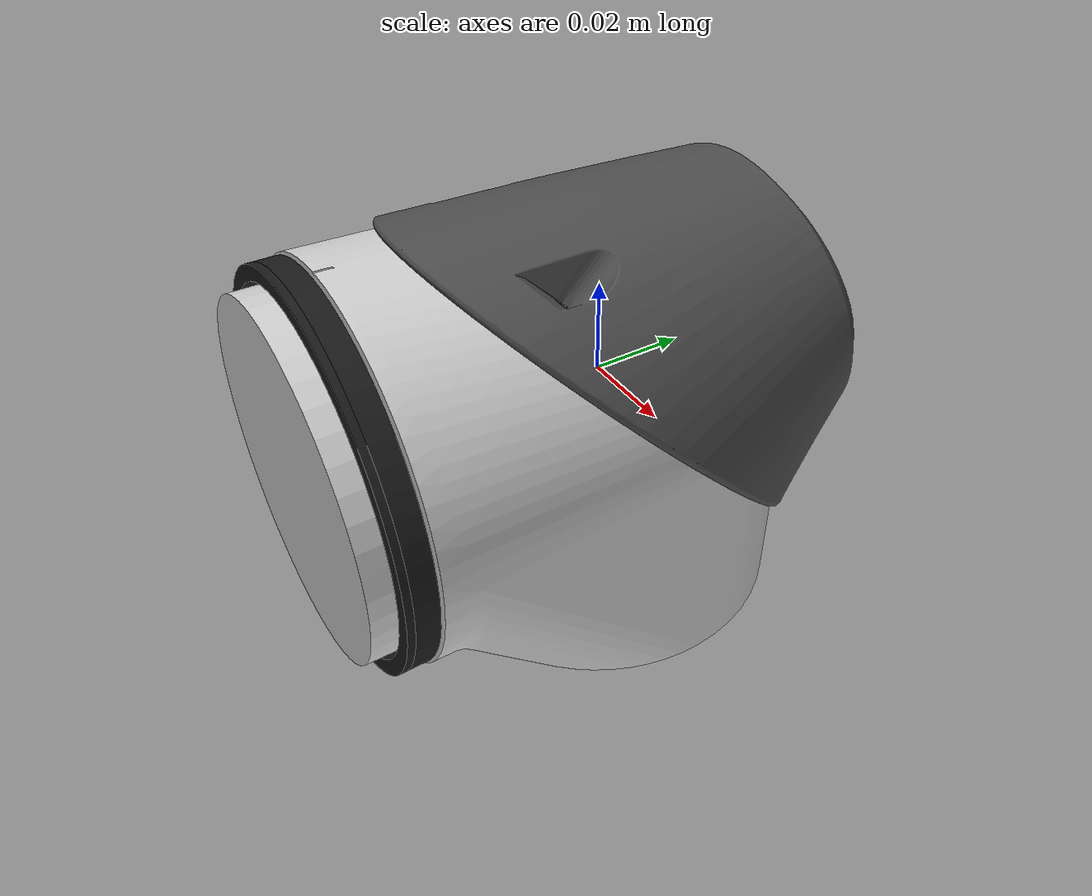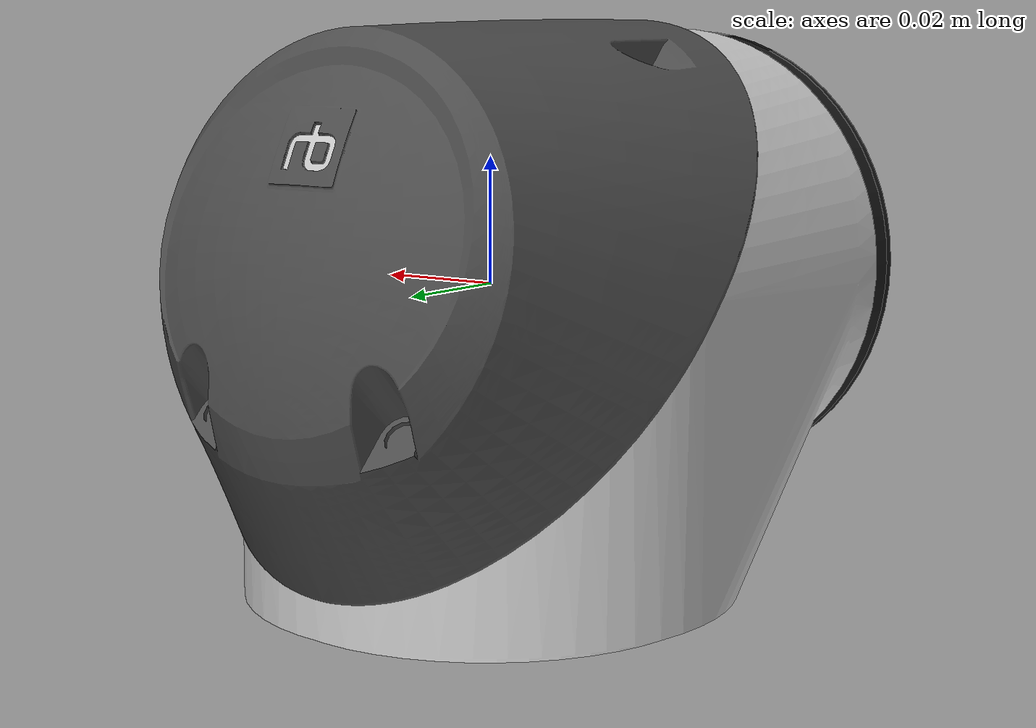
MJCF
<mujoco model="link5">
  <default>
    <default class="visual">
      <geom group="2" type="mesh" contype="0" conaffinity="0"/>
    </default>
    <default class="collision">
      <geom group="3" type="mesh"/>
    </default>
  </default>
  <asset>
    <material name="244,244,244_2" specular="0.5" shininess="0.5" rgba="0.8 0.8 0.8 1"/>
    <material name="125,125,125_2" specular="0.5" shininess="0.5" rgba="0.3 0.3 0.3 1"/>
    <material name="204,204,204_2" specular="0.5" shininess="0.5" rgba="0.1 0.1 0.1 1"/>
    <material name="64,64,64_4" specular="0.5" shininess="0.5" rgba="0.1 0.1 0.1 1"/>
    <material name="Material.001" specular="0.5" shininess="0.5" rgba="0.8 0.8 0.8 1"/>
    <mesh file="link5_0.obj"/>
    <mesh file="link5_1.obj"/>
    <mesh file="link5_2.obj"/>
    <mesh file="link5_3.obj"/>
    <mesh file="link5_4.obj"/>
  </asset>
  <worldbody>
    <body name="link5">
      <geom mesh="link5_0" material="Material.001" class="visual"/>
      <geom mesh="link5_1" material="64,64,64_4" class="visual"/>
      <geom mesh="link5_2" material="204,204,204_2" class="visual"/>
      <geom mesh="link5_3" material="125,125,125_2" class="visual"/>
      <geom mesh="link5_4" material="244,244,244_2" class="visual"/>
      <geom mesh="link5_0" class="collision"/>
      <geom mesh="link5_1" class="collision"/>
      <geom mesh="link5_2" class="collision"/>
      <geom mesh="link5_3" class="collision"/>
      <geom mesh="link5_4" class="collision"/>
    </body>
  </worldbody>
</mujoco>
